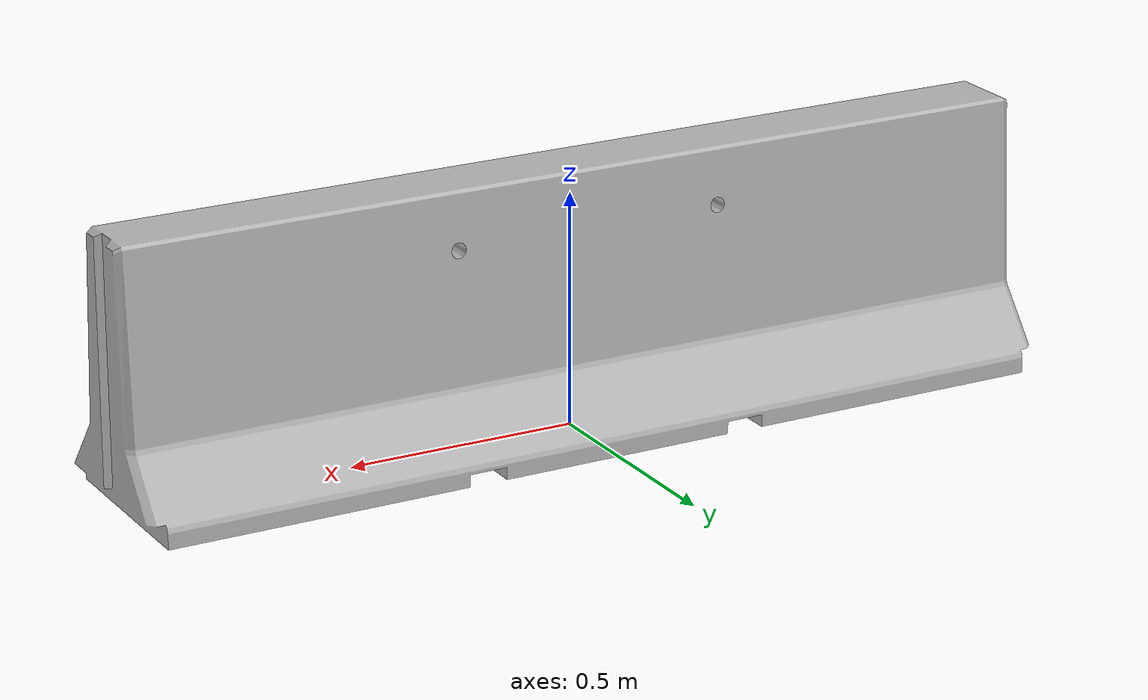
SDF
<?xml version="1.0" ?>
<sdf version="1.5">
  <model name="jersey_barrier_2x0-4x0-6">
    <static>true</static>
    <link name="link">
      <visual name="visual">
        <geometry>
          <mesh>
            <uri>model://jersey_barrier/meshes/jersey_barrier.dae</uri>
            <scale> 0.5 0.5 0.5 </scale>
          </mesh>
        </geometry>
      </visual>
      <collision name="box">
        <pose>0 0 0 0 0 0</pose>
        <geometry>
          <box>
             <!-- Original size: 4 0.8 1.143 -->
             <size>2 0.4 0.57</size>
          </box>
        </geometry>
      </collision>
    </link>
  </model>
</sdf>
